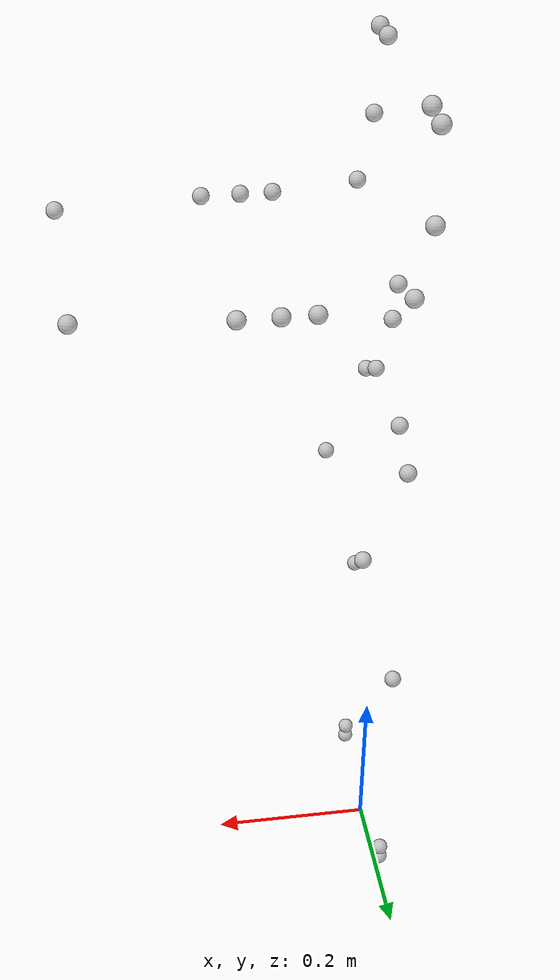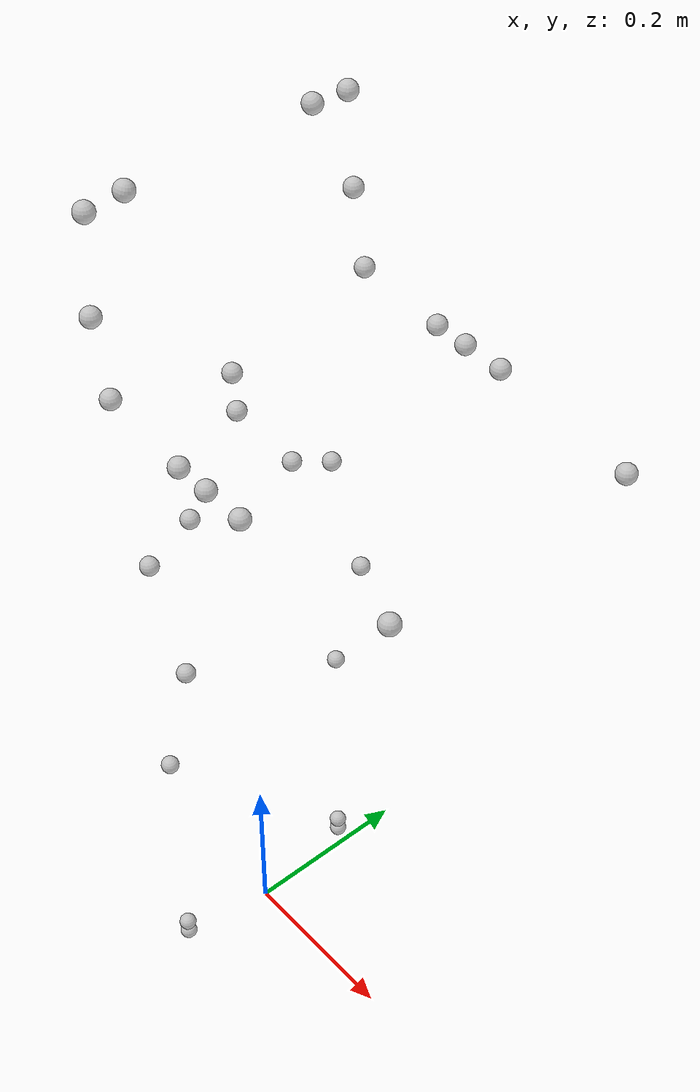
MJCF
<mujoco model="g1_ghost">
<worldbody>
<body name="ghost_pelvis" pos="0 0 0.793">
  <joint name="ghost_floating_base_joint" type="free"/>
  <geom type="sphere" size="0.01" contype="0" conaffinity="0" group="1" rgba="0.7 0.7 0.7 0.7"/>
  <geom type="sphere" size="0.01" contype="0" conaffinity="0" group="1" rgba="0.7 0.7 0.7 0.7"/>

  <!-- 左腿 -->
  <body name="ghost_left_hip_pitch_link" pos="0 0.064452 -0.1027">
    <joint name="ghost_left_hip_pitch_joint" axis="0 1 0" range="-2.5307 2.8798"/>
    <geom type="sphere" size="0.01" contype="0" conaffinity="0" group="1" rgba="0.7 0.7 0.7 0.7"/>
    <body name="ghost_left_hip_roll_link" pos="0 0.052 -0.030465" quat="0.996179 0 -0.0873386 0">
      <joint name="ghost_left_hip_roll_joint" axis="1 0 0" range="-0.5236 2.9671"/>
      <geom type="sphere" size="0.01" contype="0" conaffinity="0" group="1" rgba="0.7 0.7 0.7 0.7"/>
      <body name="ghost_left_hip_yaw_link" pos="0.025001 0 -0.12412">
        <joint name="ghost_left_hip_yaw_joint" axis="0 0 1" range="-2.7576 2.7576"/>
        <geom type="sphere" size="0.01" contype="0" conaffinity="0" group="1" rgba="0.7 0.7 0.7 0.7"/>
        <body name="ghost_left_knee_link" pos="-0.078273 0.0021489 -0.17734" quat="0.996179 0 0.0873386 0">
          <joint name="ghost_left_knee_joint" axis="0 1 0" range="-0.087267 2.8798"/>
          <geom type="sphere" size="0.01" contype="0" conaffinity="0" group="1" rgba="0.7 0.7 0.7 0.7"/>
          <body name="ghost_left_ankle_pitch_link" pos="0 -9.4445e-05 -0.30001">
            <joint name="ghost_left_ankle_pitch_joint" axis="0 1 0" range="-0.87267 0.5236"/>
            <geom type="sphere" size="0.01" contype="0" conaffinity="0" group="1" rgba="0.7 0.7 0.7 0.7"/>
            <body name="ghost_left_ankle_roll_link" pos="0 0 -0.017558">
              <joint name="ghost_left_ankle_roll_joint" axis="1 0 0" range="-0.2618 0.2618"/>
              <geom type="sphere" size="0.01" contype="0" conaffinity="0" group="1" rgba="0.7 0.7 0.7 0.7"/>
            </body>
          </body>
        </body>
      </body>
    </body>
  </body>

  <!-- 右腿 -->
  <body name="ghost_right_hip_pitch_link" pos="0 -0.064452 -0.1027">
    <joint name="ghost_right_hip_pitch_joint" axis="0 1 0" range="-2.5307 2.8798"/>
    <geom type="sphere" size="0.01" contype="0" conaffinity="0" group="1" rgba="0.7 0.7 0.7 0.7"/>
    <body name="ghost_right_hip_roll_link" pos="0 -0.052 -0.030465" quat="0.996179 0 -0.0873386 0">
      <joint name="ghost_right_hip_roll_joint" axis="1 0 0" range="-2.9671 0.5236"/>
      <geom type="sphere" size="0.01" contype="0" conaffinity="0" group="1" rgba="0.7 0.7 0.7 0.7"/>
      <body name="ghost_right_hip_yaw_link" pos="0.025001 0 -0.12412">
        <joint name="ghost_right_hip_yaw_joint" axis="0 0 1" range="-2.7576 2.7576"/>
        <geom type="sphere" size="0.01" contype="0" conaffinity="0" group="1" rgba="0.7 0.7 0.7 0.7"/>
        <body name="ghost_right_knee_link" pos="-0.078273 -0.0021489 -0.17734" quat="0.996179 0 0.0873386 0">
          <joint name="ghost_right_knee_joint" axis="0 1 0" range="-0.087267 2.8798"/>
          <geom type="sphere" size="0.01" contype="0" conaffinity="0" group="1" rgba="0.7 0.7 0.7 0.7"/>
          <body name="ghost_right_ankle_pitch_link" pos="0 9.4445e-05 -0.30001">
            <joint name="ghost_right_ankle_pitch_joint" axis="0 1 0" range="-0.87267 0.5236"/>
            <geom type="sphere" size="0.01" contype="0" conaffinity="0" group="1" rgba="0.7 0.7 0.7 0.7"/>
            <body name="ghost_right_ankle_roll_link" pos="0 0 -0.017558">
              <joint name="ghost_right_ankle_roll_joint" axis="1 0 0" range="-0.2618 0.2618"/>
              <geom type="sphere" size="0.01" contype="0" conaffinity="0" group="1" rgba="0.7 0.7 0.7 0.7"/>
            </body>
          </body>
        </body>
      </body>
    </body>
  </body>

  <!-- 躯干与手臂 -->
  <body name="ghost_waist_yaw_link">
    <joint name="ghost_waist_yaw_joint" axis="0 0 1" range="-2.618 2.618"/>
    <geom type="sphere" size="0.01" contype="0" conaffinity="0" group="1" rgba="0.7 0.7 0.7 0.7"/>
    <body name="ghost_waist_roll_link" pos="-0.0039635 0 0.044">
      <joint name="ghost_waist_roll_joint" axis="1 0 0" range="-0.52 0.52"/>
      <geom type="sphere" size="0.01" contype="0" conaffinity="0" group="1" rgba="0.7 0.7 0.7 0.7"/>
      <body name="ghost_torso_link">
        <joint name="ghost_waist_pitch_joint" axis="0 1 0" range="-0.52 0.52"/>
        <geom type="sphere" size="0.01" contype="0" conaffinity="0" group="1" rgba="0.7 0.7 0.7 0.7"/>

        <!-- 左臂 -->
        <body name="ghost_left_shoulder_pitch_link" pos="0.0039563 0.10022 0.24778" quat="0.990264 0.139201 1.38722e-05 -9.86868e-05">
          <joint name="ghost_left_shoulder_pitch_joint" axis="0 1 0" range="-3.0892 2.6704"/>
          <geom type="sphere" size="0.01" contype="0" conaffinity="0" group="1" rgba="0.7 0.7 0.7 0.7"/>
          <body name="ghost_left_shoulder_roll_link" pos="0 0.038 -0.013831" quat="0.990268 -0.139172 0 0">
            <joint name="ghost_left_shoulder_roll_joint" axis="1 0 0" range="-1.5882 2.2515"/>
            <geom type="sphere" size="0.01" contype="0" conaffinity="0" group="1" rgba="0.7 0.7 0.7 0.7"/>
            <body name="ghost_left_shoulder_yaw_link" pos="0 0.00624 -0.1032">
              <joint name="ghost_left_shoulder_yaw_joint" axis="0 0 1" range="-2.618 2.618"/>
              <geom type="sphere" size="0.01" contype="0" conaffinity="0" group="1" rgba="0.7 0.7 0.7 0.7"/>
              <body name="ghost_left_elbow_link" pos="0.015783 0 -0.080518">
                <joint name="ghost_left_elbow_joint" axis="0 1 0" range="-1.0472 2.0944"/>
                <geom type="sphere" size="0.01" contype="0" conaffinity="0" group="1" rgba="0.7 0.7 0.7 0.7"/>
                <body name="ghost_left_wrist_roll_link" pos="0.1 0.00188791 -0.01">
                  <joint name="ghost_left_wrist_roll_joint" axis="1 0 0" range="-1.97222 1.97222"/>
                  <geom type="sphere" size="0.01" contype="0" conaffinity="0" group="1" rgba="0.7 0.7 0.7 0.7"/>
                  <body name="ghost_left_wrist_pitch_link" pos="0.038 0 0">
                    <joint name="ghost_left_wrist_pitch_joint" axis="0 1 0" range="-1.61443 1.61443"/>
                    <geom type="sphere" size="0.01" contype="0" conaffinity="0" group="1" rgba="0.7 0.7 0.7 0.7"/>
                    <body name="ghost_left_wrist_yaw_link" pos="0.046 0 0">
                      <joint name="ghost_left_wrist_yaw_joint" axis="0 0 1" range="-1.61443 1.61443"/>
                      <geom type="sphere" size="0.01" contype="0" conaffinity="0" group="1" rgba="0.7 0.7 0.7 0.7"/>
                      <geom name="ghost_left_palm_center" type="sphere" pos="0.17 -0.015 0" size="0.01" contype="0" conaffinity="0" group="1" density="0" rgba="0.7 0.7 0.7 0.7"/>
                    </body>
                  </body>
                </body>
              </body>
            </body>
          </body>
        </body>

        <!-- 右臂 -->
        <body name="ghost_right_shoulder_pitch_link" pos="0.0039563 -0.10021 0.24778" quat="0.990264 -0.139201 1.38722e-05 9.86868e-05">
          <joint name="ghost_right_shoulder_pitch_joint" axis="0 1 0" range="-3.0892 2.6704"/>
          <geom type="sphere" size="0.01" contype="0" conaffinity="0" group="1" rgba="0.7 0.7 0.7 0.7"/>
          <body name="ghost_right_shoulder_roll_link" pos="0 -0.038 -0.013831" quat="0.990268 0.139172 0 0">
            <joint name="ghost_right_shoulder_roll_joint" axis="1 0 0" range="-2.2515 1.5882"/>
            <geom type="sphere" size="0.01" contype="0" conaffinity="0" group="1" rgba="0.7 0.7 0.7 0.7"/>
            <body name="ghost_right_shoulder_yaw_link" pos="0 -0.00624 -0.1032">
              <joint name="ghost_right_shoulder_yaw_joint" axis="0 0 1" range="-2.618 2.618"/>
              <geom type="sphere" size="0.01" contype="0" conaffinity="0" group="1" rgba="0.7 0.7 0.7 0.7"/>
              <body name="ghost_right_elbow_link" pos="0.015783 0 -0.080518">
                <joint name="ghost_right_elbow_joint" axis="0 1 0" range="-1.0472 2.0944"/>
                <geom type="sphere" size="0.01" contype="0" conaffinity="0" group="1" rgba="0.7 0.7 0.7 0.7"/>
                <body name="ghost_right_wrist_roll_link" pos="0.1 -0.00188791 -0.01">
                  <joint name="ghost_right_wrist_roll_joint" axis="1 0 0" range="-1.97222 1.97222"/>
                  <geom type="sphere" size="0.01" contype="0" conaffinity="0" group="1" rgba="0.7 0.7 0.7 0.7"/>
                  <body name="ghost_right_wrist_pitch_link" pos="0.038 0 0">
                    <joint name="ghost_right_wrist_pitch_joint" axis="0 1 0" range="-1.61443 1.61443"/>
                    <geom type="sphere" size="0.01" contype="0" conaffinity="0" group="1" rgba="0.7 0.7 0.7 0.7"/>
                    <body name="ghost_right_wrist_yaw_link" pos="0.046 0 0">
                      <joint name="ghost_right_wrist_yaw_joint" axis="0 0 1" range="-1.61443 1.61443"/>
                      <geom type="sphere" size="0.01" contype="0" conaffinity="0" group="1" rgba="0.7 0.7 0.7 0.7"/>
                      <geom name="ghost_right_palm_center" type="sphere" pos="0.17 0.015 0" size="0.01" contype="0" conaffinity="0" group="1" density="0" rgba="0.7 0.7 0.7 0.7"/>
                    </body>
                  </body>
                </body>
              </body>
            </body>
          </body>
        </body>
      </body>
    </body>
  </body>
</body>
</worldbody>
</mujoco>
